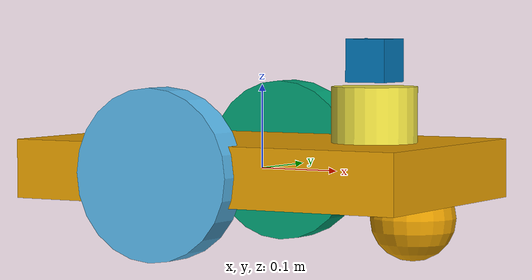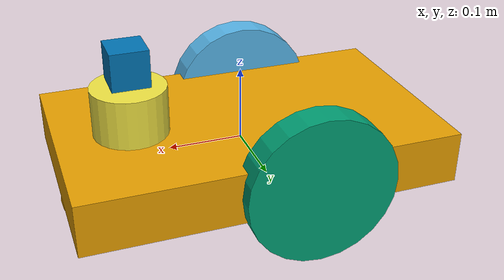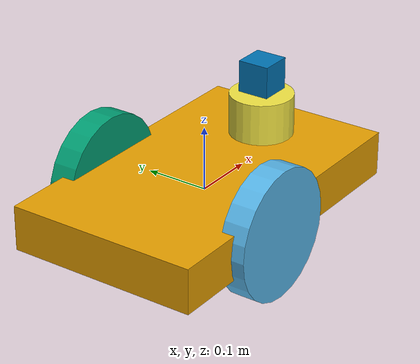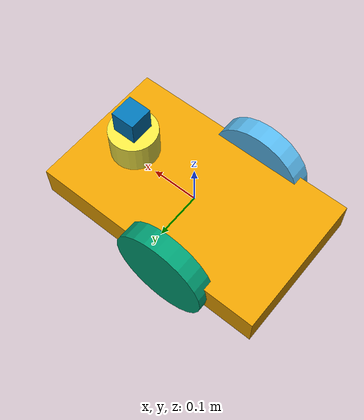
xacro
<?xml version="1.0"?>

<!--robot description-->
<robot name="robo_ dif" xmlns:xacro="http://www.ros.org/wiki/xacro">

  <!-- ############################# INCLUDES ##########################  -->

  <xacro:include filename="$(find urdf_teste)/urdf/macro.xacro" />

  <!-- ############################# LINKS #############################  -->

  <!--base link-->
  <link name="base_link">
    <!--base link pose-->
    <pose>0 0 0.1 0 0 0</pose>

    <!--chassis visual-->
    <visual>
      <origin rpy="0 0 0" xyz="0 0 0"/>
      <geometry>
        <box size="0.5 0.3 0.07"/>
      </geometry>
    </visual>

    <!--chassis collision-->
    <collision>
      <geometry>
        <box size="0.5 0.3 0.07"/>
      </geometry>
    </collision>

    <!--chassis inertial-->
    <inertial>
      <mass value="5"/>
      <origin rpy="0 0 0" xyz="0 0 0.1"/>
      <inertia ixx="0.0395416666667" ixy="0" ixz="0" iyy="0.106208333333" iyz="0" izz="0.106208333333"/>
    </inertial>

    <!--caster front visual-->
    <visual>
      <origin rpy=" 0 0 0" xyz="0.2 0 -0.05"/>
        <geometry>
          <sphere radius="0.05"/>
        </geometry>
    </visual>

    <!--caster front collision-->
    <collision>
      <origin rpy=" 0 0 0" xyz="0.35 0 -0.05"/>
      <geometry>
        <sphere radius="0.05"/>
      </geometry>
      <surface>
        <friction>
          <ode>
            <mu>0</mu>
            <mu2>0</mu2>
            <slip1>1.0</slip1>
            <slip2>1.0</slip2>
          </ode>
        </friction>
      </surface>
    </collision>
  </link>

  <!--left wheel-->
  <link name="lwheel">
    <!--left wheel visual-->
    <visual>
      <origin rpy="0 1.5707 1.5707" xyz="0 0 0"/>
      <geometry>
        <cylinder length="0.04" radius="0.1"/>
      </geometry>
    </visual>

    <!--left wheel collision-->
    <collision>
      <origin rpy="0 1.5707 1.5707" xyz="0 0 0"/>
      <geometry>
        <cylinder length="0.04" radius="0.1"/>
      </geometry>
    </collision>

    <!--left wheel inertial-->
    <inertial>
      <mass value="0.2"/>
      <origin rpy="0 1.5707 1.5707" xyz="0 0 0"/>
      <inertia ixx="0.00052666666" ixy="0" ixz="0" iyy="0.00052666666" iyz="0" izz="0.001"/>
    </inertial>
  </link>

  <!--right wheel-->
  <link name="rwheel">
    <!--right wheel visual-->
    <visual>
      <origin rpy="0 1.5707 1.5707" xyz="0 0 0"/>
      <geometry>
        <cylinder length="0.04" radius="0.1"/>
      </geometry>
    </visual>

    <!--right wheel collision-->
    <collision>
      <origin rpy="0 1.5707 1.5707" xyz="0 0 0"/>
      <geometry>
        <cylinder length="0.04" radius="0.1"/>
      </geometry>
    </collision>

    <!--right wheel inertial-->
    <inertial>
      <mass value="0.2"/>
      <origin rpy="0 1.5707 1.5707" xyz="0 0 0"/>
      <inertia ixx="0.00052666666" ixy="0" ixz="0" iyy="0.00052666666" iyz="0" izz="0.001"/>
    </inertial>
  </link>

  <!--sensor laser-->
  <link name="sensor_laser">
    <!--sensor laser visual-->
    <visual>
      <origin xyz="0 0 0" rpy="0 0 0" />
      <geometry>
        <cylinder radius="0.05" length="0.1"/>
      </geometry>
    </visual>

    <!--sensor laser collision-->
    <collision>
      <origin xyz="0 0 0" rpy="0 0 0"/>
      <geometry>
        <cylinder radius="0.05" length="0.1"/>
      </geometry>
    </collision>

    <!--sensor laser inertial-->
    <inertial>
      <origin xyz="0 0 0" rpy="0 0 0" />
      <mass value="1" />
      <xacro:cylinder_inertia mass="1" r="0.05" l="0.1" />
    </inertial>
  </link>

  <!--depth camera-->
  <link name="depth_camera">
    <!--depth camera visual-->
    <visual>
      <origin xyz="0 0 0" rpy="0 0 0" />
      <geometry>
        <box size="0.05 0.05 0.05"/>
      </geometry>
    </visual>
  </link>

  <!-- ############################# JOINTS #############################  -->

  <!--joint for left wheel-->
  <joint name="joint_left_wheel" type="continuous">
    <origin rpy="0 0 0" xyz="-0.05 -0.15 0"/>
    <child link="lwheel" />
    <parent link="base_link"/>
    <axis rpy="0 0 0" xyz="0 1 0"/>
    <limit effort="10000" velocity="1000"/>
    <joint_properties damping="1.0" friction="1.0" />
  </joint>

  <!--joint for right wheel-->
  <joint name="joint_right_wheel" type="continuous">
    <origin rpy="0 0 0" xyz="-0.05 0.15 0"/>
    <child link="rwheel" />
    <parent link="base_link"/>
    <axis rpy="0 0 0" xyz="0 1 0"/>
    <limit effort="10000" velocity="1000"/>
    <joint_properties damping="1.0" friction="1.0" />
  </joint>

  <!--joint for sensor laser-->
  <joint name="joint_sensor_laser" type="fixed">
    <origin xyz="0.15 0 0.05" rpy="0 0 0"/>
    <parent link="base_link"/>
    <child link="sensor_laser"/>
  </joint>

  <!--joint for depth camera-->
  <joint name="joint_depth_camera" type="fixed">
    <origin xyz="0.15 0 0.13" rpy="0 0 0"/>
    <parent link="base_link"/>
    <child link="depth_camera"/>
  </joint>

  <!-- ############################# PLUGINS #############################  -->

  <!--gazebo diferential drive plugin-->
  <gazebo>
    <plugin filename="libgazebo_ros_diff_drive.so" name="differential_drive_controller">
      <alwaysOn>true</alwaysOn>
      <updateRate>20</updateRate>
      <leftJoint>joint_left_wheel</leftJoint>
      <rightJoint>joint_right_wheel</rightJoint>
      <wheelSeparation>0.4</wheelSeparation>
      <wheelDiameter>0.2</wheelDiameter>
      <torque>0.1</torque>
      <commandTopic>cmd_vel</commandTopic>
      <odometryTopic>odom</odometryTopic>
      <odometryFrame>odom</odometryFrame>
      <robotBaseFrame>link_chassis</robotBaseFrame>
    </plugin>
  </gazebo>

  <!--gazebo sensor laser plugin-->
  <gazebo reference="sensor_laser">
    <sensor type="ray" name="head_hokuyo_sensor">
      <pose>0 0 0 0 0 0</pose>
      <visualize>false</visualize>
      <update_rate>20</update_rate>
      <ray>
        <scan>
          <horizontal>
            <samples>720</samples>
            <resolution>1</resolution>
            <min_angle>-1.570796</min_angle>
            <max_angle>1.570796</max_angle>
          </horizontal>
        </scan>
        <range>
          <min>0.10</min>
          <max>10.0</max>
          <resolution>0.01</resolution>
        </range>
        <noise>
          <type>gaussian</type>
          <mean>0.0</mean>
          <stddev>0.01</stddev>
        </noise>
      </ray>
      <plugin name="gazebo_ros_head_hokuyo_controller" filename="libgazebo_ros_laser.so">
        <topicName>/robo_dif/laser/scan</topicName>
        <frameName>sensor_laser</frameName>
      </plugin>
    </sensor>
  </gazebo>

  <!--gazebo depth camera plugin-->
  <gazebo reference="depth_camera">
    <sensor type="depth" name="depth_camera">
      <always_on>true</always_on>
      <visualize>true</visualize>
      <camera>
          <horizontal_fov>1.047</horizontal_fov>
          <image>
              <width>640</width>
              <height>480</height>
              <format>R8G8B8</format>
          </image>
          <depth_camera>

          </depth_camera>
          <clip>
              <near>0.1</near>
              <far>100</far>
          </clip>
      </camera>

      <plugin name="camera_controller" filename="libgazebo_ros_openni_kinect.so">
          <baseline>0.2</baseline>
          <alwaysOn>true</alwaysOn>
              <updateRate>10.0</updateRate>
              <cameraName>depth_camera</cameraName>
              <frameName>depth_camera</frameName>
          <imageTopicName>rgb/image_raw</imageTopicName>
          <depthImageTopicName>depth/image_raw</depthImageTopicName>
          <pointCloudTopicName>depth/points</pointCloudTopicName>
          <cameraInfoTopicName>rgb/camera_info</cameraInfoTopicName>
          <depthImageCameraInfoTopicName>depth/camera_info</depthImageCameraInfoTopicName>
          <pointCloudCutoff>0.4</pointCloudCutoff>
              <hackBaseline>0.07</hackBaseline>
              <distortionK1>0.0</distortionK1>
              <distortionK2>0.0</distortionK2>
              <distortionK3>0.0</distortionK3>
              <distortionT1>0.0</distortionT1>
              <distortionT2>0.0</distortionT2>
          <CxPrime>0.0</CxPrime>
          <Cx>0.0</Cx>
          <Cy>0.0</Cy>
          <focalLength>0.0</focalLength>
          </plugin>
    </sensor>
  </gazebo>
</robot>

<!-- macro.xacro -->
<robot xmlns:xacro="http://www.ros.org/wiki/xacro">

  <!--cilinder inertia-->
  <xacro:macro name="cylinder_inertia" params="mass r l">
    <inertia ixx="${mass*(3*r*r+l*l)/12}" ixy = "0" ixz = "0"
             iyy="${mass*(3*r*r+l*l)/12}" iyz = "0" izz="${mass*(r*r)/2}" />
  </xacro:macro>

  <!--sphere inertia-->
  <xacro:macro name="sphere_inertia" params="mass r">
    <inertia ixx="${mass*r*r*2/5}" ixy = "0" ixz = "0"
             iyy="${mass*r*r*2/5}" iyz = "0" izz="${mass*r*r*2/5}" />
  </xacro:macro>
</robot>
